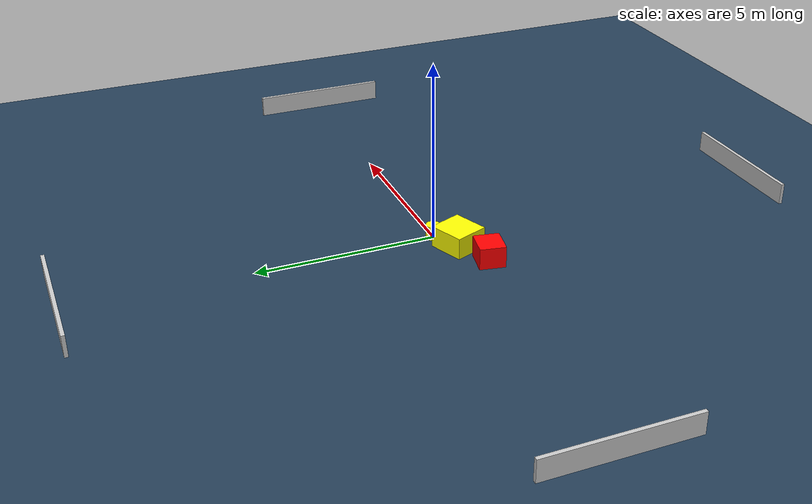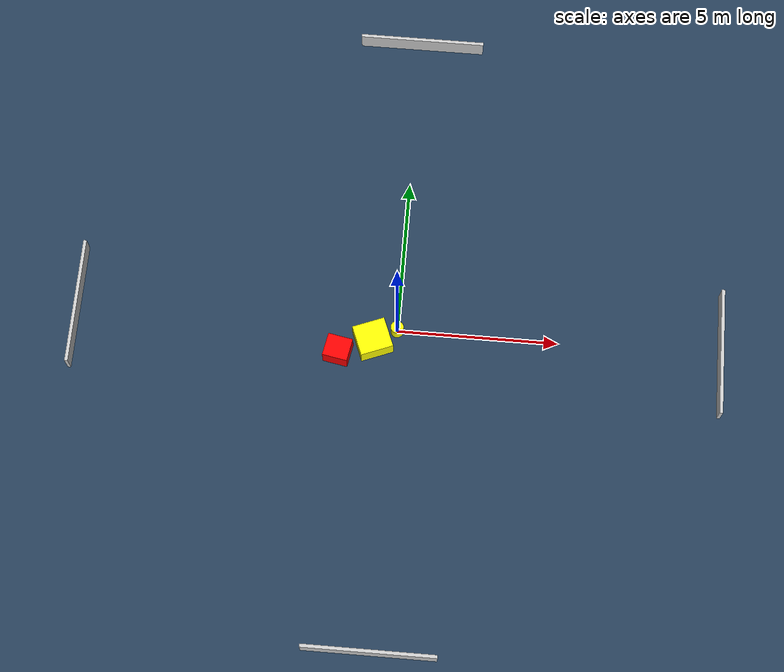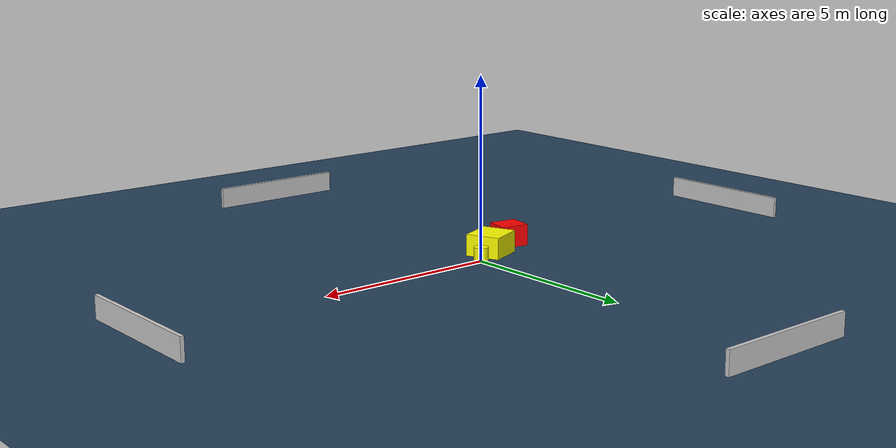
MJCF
<?xml version="1.0" ?>
<mujoco model="generated_environment">
  <option timestep="0.01" integrator="RK4" cone="elliptic"/>
  <default>
    <geom density="1"/>
  </default>
  <asset>
    <texture builtin="gradient" height="3072" name="skybox" rgb1="0.3 0.5 0.7" rgb2="0 0 0" type="skybox" width="512"/>
    <texture builtin="checker" height="300" name="groundplane" rgb1="0.2 0.3 0.4" rgb2="0.1 0.2 0.3" type="2d" width="300"/>
    <material name="groundplane" reflectance="0.2" texrepeat="5 5" texture="groundplane"/>
  </asset>
  <worldbody>
    <light dir="0 0 -1" directional="true" pos="0 0 1.5"/>
    <geom condim="3" friction="0.5 0.005 0.001" material="groundplane" name="floor" pos="0 0 0" size="0 0 0.05" type="plane"/>
    <body name="walls">
      <geom name="wall_1" condim="4" pos="-10.0 0.0 0.3" rgba="0.800000011920929 0.800000011920929 0.800000011920929 1.0" size="0.05 2.0 0.3" type="box"/>
      <geom name="wall_2" condim="4" pos="10.0 0.0 0.3" rgba="0.800000011920929 0.800000011920929 0.800000011920929 1.0" size="0.05 2.0 0.3" type="box"/>
      <geom name="wall_3" condim="4" pos="0.0 -10.0 0.3" rgba="0.800000011920929 0.800000011920929 0.800000011920929 1.0" size="2.0 0.05 0.3" type="box"/>
      <geom name="wall_4" condim="4" pos="0.0 10.0 0.3" rgba="0.800000011920929 0.800000011920929 0.800000011920929 1.0" size="2.0 0.05 0.3" type="box"/>
    </body>
    <body name="robot">
      <joint name="joint_x" type="slide" pos="0 0 0" axis="1 0 0"/>
      <joint name="joint_y" type="slide" pos="0 0 0" axis="0 1 0"/>
      <geom name="robot" type="cylinder" pos="0.0 0.0 0.2" size="0.2 0.2 0.0" mass="5.0" friction="1.0 0.005 0.0001" condim="4" rgba="1.0 1.0 0.0 1.0"/>
    </body>
    <body name="obstacle_1_movable">
      <geom name="obstacle_1_movable" condim="4" pos="-0.7243343768257196 -0.4267507655927913 0.3" euler="0 0 21.78213817033235" friction="0.0 0.005 0.001" rgba="1.0 1.0 0.0 1.0" size="0.5134645694567825 0.48089760991317076 0.3" type="box" mass="0.1"/>
      <joint type="free"/>
    </body>
    <body name="obstacle_2_static">
      <geom name="obstacle_2_static" condim="4" pos="-1.7672895477778823 -0.861372338663929 0.3" euler="0 0 259.48347081630953" friction="0.0 0.005 0.001" rgba="1.0 0.0 0.0 1.0" size="0.3574607288471862 0.3894971411008219 0.3" type="box"/>
    </body>
  </worldbody>
  <actuator>
    <motor name="actuator_x" joint="joint_x" gear="1" ctrlrange="-1 1"/>
    <motor name="actuator_y" joint="joint_y" gear="1" ctrlrange="-1 1"/>
  </actuator>
</mujoco>
